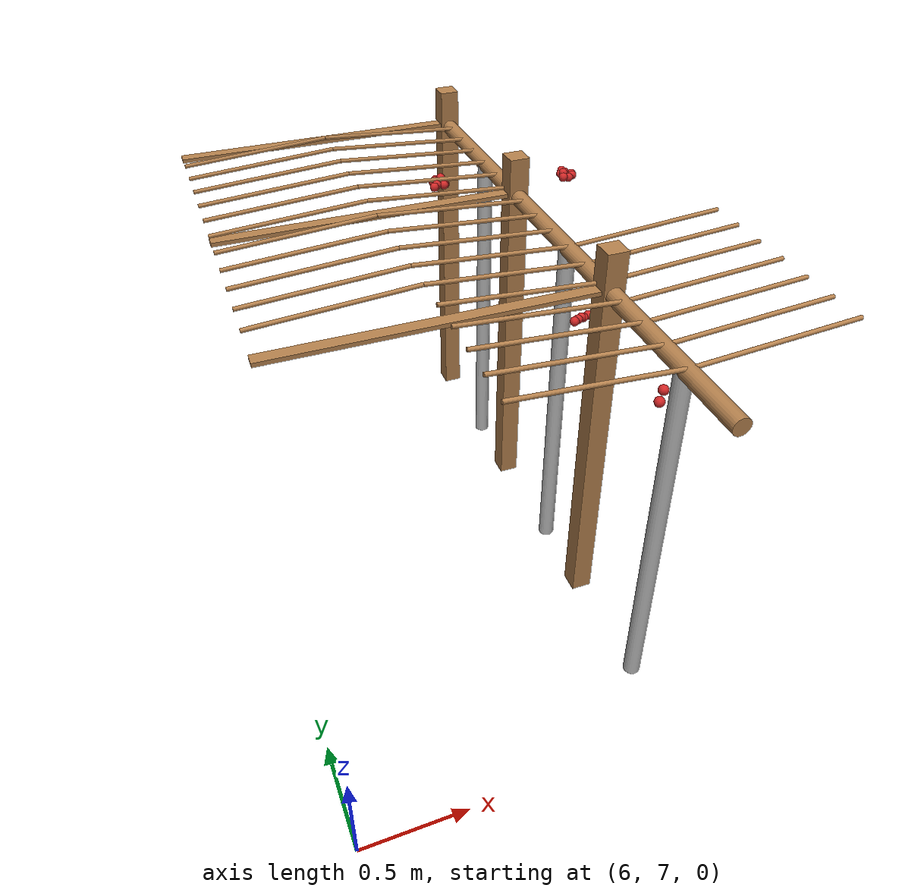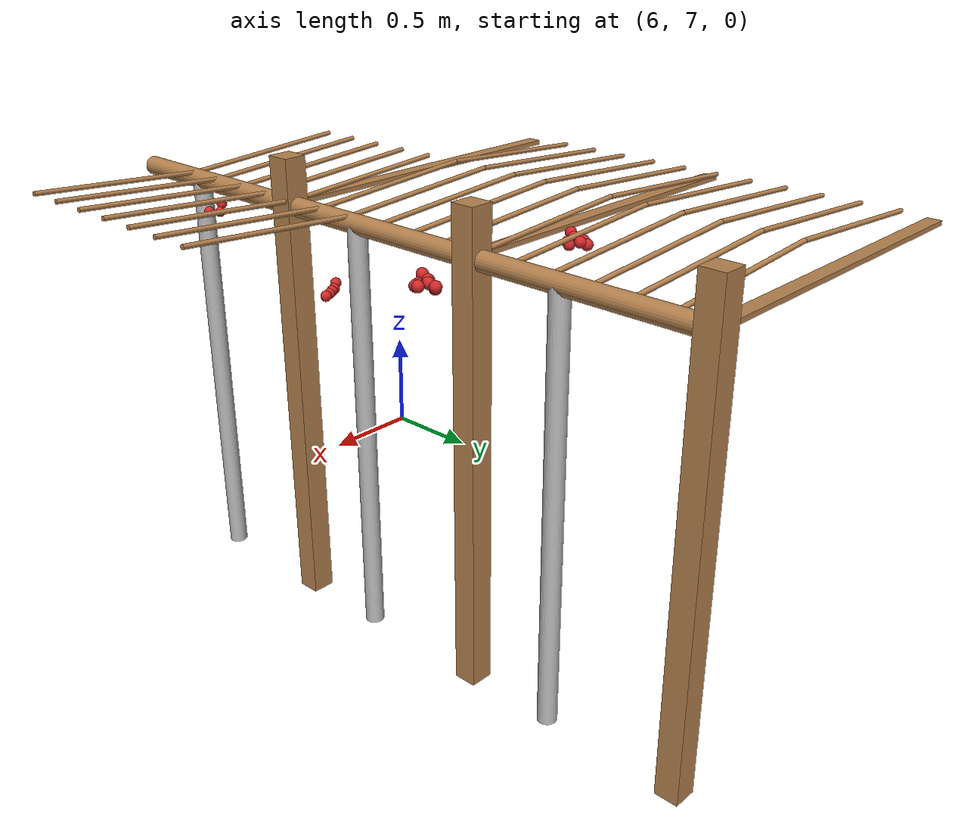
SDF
<sdf version="1.4">
 <model name="pergola">
  <include><name>post_63</name><pose>7.5 8.0 0 0 0 0</pose><uri>model://post</uri></include>
  <include><name>post_64</name><pose>7.5 9.0 0 0 0 0</pose><uri>model://post</uri></include>
  <include><name>post_65</name><pose>7.5 10.0 0 0 0 0</pose><uri>model://post</uri></include>
  <link name="beam_52">
   <pose>6.75 8.0 1.81 0 0 0</pose>
   <collision name="collision"><geometry><box><size>1.5 0.06 0.02</size></box></geometry></collision>
   <visual name="visual">
    <geometry><box><size>1.5 0.06 0.02</size></box></geometry>
    <material><script><name>Gazebo/Wood</name></script></material>
   </visual>
   <inertial>
    <mass>5</mass>
    <inertia>
     <ixx>0.0016666666666666668</ixx>
     <ixy>0.0</ixy>
     <ixz>0.0</ixz>
     <iyy>0.9390000000000001</iyy>
     <iyz>0.0</iyz>
     <izz>0.9376666666666665</izz>
    </inertia>
   </inertial>
  </link>
  <link name="beam_53">
   <pose>6.75 9.0 1.81 0 0 0</pose>
   <collision name="collision"><geometry><box><size>1.5 0.06 0.02</size></box></geometry></collision>
   <visual name="visual">
    <geometry><box><size>1.5 0.06 0.02</size></box></geometry>
    <material><script><name>Gazebo/Wood</name></script></material>
   </visual>
   <inertial>
    <mass>5</mass>
    <inertia>
     <ixx>0.0016666666666666668</ixx>
     <ixy>0.0</ixy>
     <ixz>0.0</ixz>
     <iyy>0.9390000000000001</iyy>
     <iyz>0.0</iyz>
     <izz>0.9376666666666665</izz>
    </inertia>
   </inertial>
  </link>
  <link name="beam_54">
   <pose>6.75 10.0 1.81 0 0 0</pose>
   <collision name="collision"><geometry><box><size>1.5 0.06 0.02</size></box></geometry></collision>
   <visual name="visual">
    <geometry><box><size>1.5 0.06 0.02</size></box></geometry>
    <material><script><name>Gazebo/Wood</name></script></material>
   </visual>
   <inertial>
    <mass>5</mass>
    <inertia>
     <ixx>0.0016666666666666668</ixx>
     <ixy>0.0</ixy>
     <ixz>0.0</ixz>
     <iyy>0.9390000000000001</iyy>
     <iyz>0.0</iyz>
     <izz>0.9376666666666665</izz>
    </inertia>
   </inertial>
  </link>
  <include><name>tree_57</name><pose>7.5 7.4 0 0 0 0</pose><uri>model://tree_trunk</uri></include>
  <include><name>tree_58</name><pose>7.5 8.4 0 0 0 0</pose><uri>model://tree_trunk</uri></include>
  <include><name>tree_59</name><pose>7.5 9.4 0 0 0 0</pose><uri>model://tree_trunk</uri></include>
  <link name="baseBranch_57">
   <pose>7.5 7.5 1.8 1.5707963267948966 0 0</pose>
   <collision name="collision">
    <geometry><cylinder><radius>0.04</radius><length>0.94</length></cylinder></geometry>
   </collision>
   <visual name="visual">
    <geometry><cylinder><radius>0.04</radius><length>0.94</length></cylinder></geometry>
    <material><script><name>Gazebo/WoodFloor</name></script></material>
   </visual>
   <inertial>
    <mass>10</mass>
    <inertia>
     <ixx>0.7403333333333334</ixx>
     <ixy>0.0</ixy>
     <ixz>0.0</ixz>
     <iyy>0.7403333333333334</iyy>
     <iyz>0.0</iyz>
     <izz>0.008</izz>
    </inertia>
   </inertial>
  </link>
  <link name="baseBranch_58">
   <pose>7.5 8.5 1.8 1.5707963267948966 0 0</pose>
   <collision name="collision">
    <geometry><cylinder><radius>0.04</radius><length>0.94</length></cylinder></geometry>
   </collision>
   <visual name="visual">
    <geometry><cylinder><radius>0.04</radius><length>0.94</length></cylinder></geometry>
    <material><script><name>Gazebo/WoodFloor</name></script></material>
   </visual>
   <inertial>
    <mass>10</mass>
    <inertia>
     <ixx>0.7403333333333334</ixx>
     <ixy>0.0</ixy>
     <ixz>0.0</ixz>
     <iyy>0.7403333333333334</iyy>
     <iyz>0.0</iyz>
     <izz>0.008</izz>
    </inertia>
   </inertial>
  </link>
  <link name="baseBranch_59">
   <pose>7.5 9.5 1.8 1.5707963267948966 0 0</pose>
   <collision name="collision">
    <geometry><cylinder><radius>0.04</radius><length>0.94</length></cylinder></geometry>
   </collision>
   <visual name="visual">
    <geometry><cylinder><radius>0.04</radius><length>0.94</length></cylinder></geometry>
    <material><script><name>Gazebo/WoodFloor</name></script></material>
   </visual>
   <inertial>
    <mass>10</mass>
    <inertia>
     <ixx>0.7403333333333334</ixx>
     <ixy>0.0</ixy>
     <ixz>0.0</ixz>
     <iyy>0.7403333333333334</iyy>
     <iyz>0.0</iyz>
     <izz>0.008</izz>
    </inertia>
   </inertial>
  </link>
  <link name="vine_569">
   <pose>7.125 7.363333333333333 1.85 0 -1.5042281630190728 0</pose>
   <collision name="collision">
    <geometry><cylinder><radius>0.01</radius><length>0.7516648189186453</length></cylinder></geometry>
   </collision>
   <visual name="visual">
    <geometry><cylinder><radius>0.01</radius><length>0.7516648189186453</length></cylinder></geometry>
    <material><script><name>Gazebo/WoodFloor</name></script></material>
   </visual>
   <inertial>
    <mass>5</mass>
    <inertia>
     <ixx>0.23554166666666657</ixx>
     <ixy>0.0</ixy>
     <ixz>0.0</ixz>
     <iyy>0.23554166666666657</iyy>
     <iyz>0.0</iyz>
     <izz>0.00025</izz>
    </inertia>
   </inertial>
  </link>
  <link name="vine_571">
   <pose>7.125 7.53 1.85 0 -1.5042281630190728 0</pose>
   <collision name="collision">
    <geometry><cylinder><radius>0.01</radius><length>0.7516648189186453</length></cylinder></geometry>
   </collision>
   <visual name="visual">
    <geometry><cylinder><radius>0.01</radius><length>0.7516648189186453</length></cylinder></geometry>
    <material><script><name>Gazebo/WoodFloor</name></script></material>
   </visual>
   <inertial>
    <mass>5</mass>
    <inertia>
     <ixx>0.23554166666666657</ixx>
     <ixy>0.0</ixy>
     <ixz>0.0</ixz>
     <iyy>0.23554166666666657</iyy>
     <iyz>0.0</iyz>
     <izz>0.00025</izz>
    </inertia>
   </inertial>
  </link>
  <link name="vine_573">
   <pose>7.125 7.696666666666666 1.85 0 -1.5042281630190728 0</pose>
   <collision name="collision">
    <geometry><cylinder><radius>0.01</radius><length>0.7516648189186453</length></cylinder></geometry>
   </collision>
   <visual name="visual">
    <geometry><cylinder><radius>0.01</radius><length>0.7516648189186453</length></cylinder></geometry>
    <material><script><name>Gazebo/WoodFloor</name></script></material>
   </visual>
   <inertial>
    <mass>5</mass>
    <inertia>
     <ixx>0.23554166666666657</ixx>
     <ixy>0.0</ixy>
     <ixz>0.0</ixz>
     <iyy>0.23554166666666657</iyy>
     <iyz>0.0</iyz>
     <izz>0.00025</izz>
    </inertia>
   </inertial>
  </link>
  <link name="vine_575">
   <pose>7.125 7.863333333333333 1.85 0 -1.5042281630190728 0</pose>
   <collision name="collision">
    <geometry><cylinder><radius>0.01</radius><length>0.7516648189186453</length></cylinder></geometry>
   </collision>
   <visual name="visual">
    <geometry><cylinder><radius>0.01</radius><length>0.7516648189186453</length></cylinder></geometry>
    <material><script><name>Gazebo/WoodFloor</name></script></material>
   </visual>
   <inertial>
    <mass>5</mass>
    <inertia>
     <ixx>0.23554166666666657</ixx>
     <ixy>0.0</ixy>
     <ixz>0.0</ixz>
     <iyy>0.23554166666666657</iyy>
     <iyz>0.0</iyz>
     <izz>0.00025</izz>
    </inertia>
   </inertial>
  </link>
  <link name="vine_577">
   <pose>7.125 8.03 1.85 0 -1.5042281630190728 0</pose>
   <collision name="collision">
    <geometry><cylinder><radius>0.01</radius><length>0.7516648189186453</length></cylinder></geometry>
   </collision>
   <visual name="visual">
    <geometry><cylinder><radius>0.01</radius><length>0.7516648189186453</length></cylinder></geometry>
    <material><script><name>Gazebo/WoodFloor</name></script></material>
   </visual>
   <inertial>
    <mass>5</mass>
    <inertia>
     <ixx>0.23554166666666657</ixx>
     <ixy>0.0</ixy>
     <ixz>0.0</ixz>
     <iyy>0.23554166666666657</iyy>
     <iyz>0.0</iyz>
     <izz>0.00025</izz>
    </inertia>
   </inertial>
  </link>
  <link name="vine_578">
   <pose>6.375 8.196666666666665 1.85 0 1.5042281630190728 0</pose>
   <collision name="collision">
    <geometry><cylinder><radius>0.01</radius><length>0.7516648189186453</length></cylinder></geometry>
   </collision>
   <visual name="visual">
    <geometry><cylinder><radius>0.01</radius><length>0.7516648189186453</length></cylinder></geometry>
    <material><script><name>Gazebo/WoodFloor</name></script></material>
   </visual>
   <inertial>
    <mass>5</mass>
    <inertia>
     <ixx>0.23554166666666657</ixx>
     <ixy>0.0</ixy>
     <ixz>0.0</ixz>
     <iyy>0.23554166666666657</iyy>
     <iyz>0.0</iyz>
     <izz>0.00025</izz>
    </inertia>
   </inertial>
  </link>
  <link name="vine_579">
   <pose>7.125 8.196666666666665 1.85 0 -1.5042281630190728 0</pose>
   <collision name="collision">
    <geometry><cylinder><radius>0.01</radius><length>0.7516648189186453</length></cylinder></geometry>
   </collision>
   <visual name="visual">
    <geometry><cylinder><radius>0.01</radius><length>0.7516648189186453</length></cylinder></geometry>
    <material><script><name>Gazebo/WoodFloor</name></script></material>
   </visual>
   <inertial>
    <mass>5</mass>
    <inertia>
     <ixx>0.23554166666666657</ixx>
     <ixy>0.0</ixy>
     <ixz>0.0</ixz>
     <iyy>0.23554166666666657</iyy>
     <iyz>0.0</iyz>
     <izz>0.00025</izz>
    </inertia>
   </inertial>
  </link>
  <link name="vine_580">
   <pose>6.375 8.363333333333332 1.85 0 1.5042281630190728 0</pose>
   <collision name="collision">
    <geometry><cylinder><radius>0.01</radius><length>0.7516648189186453</length></cylinder></geometry>
   </collision>
   <visual name="visual">
    <geometry><cylinder><radius>0.01</radius><length>0.7516648189186453</length></cylinder></geometry>
    <material><script><name>Gazebo/WoodFloor</name></script></material>
   </visual>
   <inertial>
    <mass>5</mass>
    <inertia>
     <ixx>0.23554166666666657</ixx>
     <ixy>0.0</ixy>
     <ixz>0.0</ixz>
     <iyy>0.23554166666666657</iyy>
     <iyz>0.0</iyz>
     <izz>0.00025</izz>
    </inertia>
   </inertial>
  </link>
  <link name="vine_581">
   <pose>7.125 8.363333333333332 1.85 0 -1.5042281630190728 0</pose>
   <collision name="collision">
    <geometry><cylinder><radius>0.01</radius><length>0.7516648189186453</length></cylinder></geometry>
   </collision>
   <visual name="visual">
    <geometry><cylinder><radius>0.01</radius><length>0.7516648189186453</length></cylinder></geometry>
    <material><script><name>Gazebo/WoodFloor</name></script></material>
   </visual>
   <inertial>
    <mass>5</mass>
    <inertia>
     <ixx>0.23554166666666657</ixx>
     <ixy>0.0</ixy>
     <ixz>0.0</ixz>
     <iyy>0.23554166666666657</iyy>
     <iyz>0.0</iyz>
     <izz>0.00025</izz>
    </inertia>
   </inertial>
  </link>
  <link name="vine_582">
   <pose>6.375 8.53 1.85 0 1.5042281630190728 0</pose>
   <collision name="collision">
    <geometry><cylinder><radius>0.01</radius><length>0.7516648189186453</length></cylinder></geometry>
   </collision>
   <visual name="visual">
    <geometry><cylinder><radius>0.01</radius><length>0.7516648189186453</length></cylinder></geometry>
    <material><script><name>Gazebo/WoodFloor</name></script></material>
   </visual>
   <inertial>
    <mass>5</mass>
    <inertia>
     <ixx>0.23554166666666657</ixx>
     <ixy>0.0</ixy>
     <ixz>0.0</ixz>
     <iyy>0.23554166666666657</iyy>
     <iyz>0.0</iyz>
     <izz>0.00025</izz>
    </inertia>
   </inertial>
  </link>
  <link name="vine_583">
   <pose>7.125 8.53 1.85 0 -1.5042281630190728 0</pose>
   <collision name="collision">
    <geometry><cylinder><radius>0.01</radius><length>0.7516648189186453</length></cylinder></geometry>
   </collision>
   <visual name="visual">
    <geometry><cylinder><radius>0.01</radius><length>0.7516648189186453</length></cylinder></geometry>
    <material><script><name>Gazebo/WoodFloor</name></script></material>
   </visual>
   <inertial>
    <mass>5</mass>
    <inertia>
     <ixx>0.23554166666666657</ixx>
     <ixy>0.0</ixy>
     <ixz>0.0</ixz>
     <iyy>0.23554166666666657</iyy>
     <iyz>0.0</iyz>
     <izz>0.00025</izz>
    </inertia>
   </inertial>
  </link>
  <link name="vine_584">
   <pose>6.375 8.696666666666665 1.85 0 1.5042281630190728 0</pose>
   <collision name="collision">
    <geometry><cylinder><radius>0.01</radius><length>0.7516648189186453</length></cylinder></geometry>
   </collision>
   <visual name="visual">
    <geometry><cylinder><radius>0.01</radius><length>0.7516648189186453</length></cylinder></geometry>
    <material><script><name>Gazebo/WoodFloor</name></script></material>
   </visual>
   <inertial>
    <mass>5</mass>
    <inertia>
     <ixx>0.23554166666666657</ixx>
     <ixy>0.0</ixy>
     <ixz>0.0</ixz>
     <iyy>0.23554166666666657</iyy>
     <iyz>0.0</iyz>
     <izz>0.00025</izz>
    </inertia>
   </inertial>
  </link>
  <link name="vine_585">
   <pose>7.125 8.696666666666665 1.85 0 -1.5042281630190728 0</pose>
   <collision name="collision">
    <geometry><cylinder><radius>0.01</radius><length>0.7516648189186453</length></cylinder></geometry>
   </collision>
   <visual name="visual">
    <geometry><cylinder><radius>0.01</radius><length>0.7516648189186453</length></cylinder></geometry>
    <material><script><name>Gazebo/WoodFloor</name></script></material>
   </visual>
   <inertial>
    <mass>5</mass>
    <inertia>
     <ixx>0.23554166666666657</ixx>
     <ixy>0.0</ixy>
     <ixz>0.0</ixz>
     <iyy>0.23554166666666657</iyy>
     <iyz>0.0</iyz>
     <izz>0.00025</izz>
    </inertia>
   </inertial>
  </link>
  <link name="vine_586">
   <pose>6.375 8.863333333333332 1.85 0 1.5042281630190728 0</pose>
   <collision name="collision">
    <geometry><cylinder><radius>0.01</radius><length>0.7516648189186453</length></cylinder></geometry>
   </collision>
   <visual name="visual">
    <geometry><cylinder><radius>0.01</radius><length>0.7516648189186453</length></cylinder></geometry>
    <material><script><name>Gazebo/WoodFloor</name></script></material>
   </visual>
   <inertial>
    <mass>5</mass>
    <inertia>
     <ixx>0.23554166666666657</ixx>
     <ixy>0.0</ixy>
     <ixz>0.0</ixz>
     <iyy>0.23554166666666657</iyy>
     <iyz>0.0</iyz>
     <izz>0.00025</izz>
    </inertia>
   </inertial>
  </link>
  <link name="vine_587">
   <pose>7.125 8.863333333333332 1.85 0 -1.5042281630190728 0</pose>
   <collision name="collision">
    <geometry><cylinder><radius>0.01</radius><length>0.7516648189186453</length></cylinder></geometry>
   </collision>
   <visual name="visual">
    <geometry><cylinder><radius>0.01</radius><length>0.7516648189186453</length></cylinder></geometry>
    <material><script><name>Gazebo/WoodFloor</name></script></material>
   </visual>
   <inertial>
    <mass>5</mass>
    <inertia>
     <ixx>0.23554166666666657</ixx>
     <ixy>0.0</ixy>
     <ixz>0.0</ixz>
     <iyy>0.23554166666666657</iyy>
     <iyz>0.0</iyz>
     <izz>0.00025</izz>
    </inertia>
   </inertial>
  </link>
  <link name="vine_588">
   <pose>6.375 9.03 1.85 0 1.5042281630190728 0</pose>
   <collision name="collision">
    <geometry><cylinder><radius>0.01</radius><length>0.7516648189186453</length></cylinder></geometry>
   </collision>
   <visual name="visual">
    <geometry><cylinder><radius>0.01</radius><length>0.7516648189186453</length></cylinder></geometry>
    <material><script><name>Gazebo/WoodFloor</name></script></material>
   </visual>
   <inertial>
    <mass>5</mass>
    <inertia>
     <ixx>0.23554166666666657</ixx>
     <ixy>0.0</ixy>
     <ixz>0.0</ixz>
     <iyy>0.23554166666666657</iyy>
     <iyz>0.0</iyz>
     <izz>0.00025</izz>
    </inertia>
   </inertial>
  </link>
  <link name="vine_589">
   <pose>7.125 9.03 1.85 0 -1.5042281630190728 0</pose>
   <collision name="collision">
    <geometry><cylinder><radius>0.01</radius><length>0.7516648189186453</length></cylinder></geometry>
   </collision>
   <visual name="visual">
    <geometry><cylinder><radius>0.01</radius><length>0.7516648189186453</length></cylinder></geometry>
    <material><script><name>Gazebo/WoodFloor</name></script></material>
   </visual>
   <inertial>
    <mass>5</mass>
    <inertia>
     <ixx>0.23554166666666657</ixx>
     <ixy>0.0</ixy>
     <ixz>0.0</ixz>
     <iyy>0.23554166666666657</iyy>
     <iyz>0.0</iyz>
     <izz>0.00025</izz>
    </inertia>
   </inertial>
  </link>
  <link name="vine_590">
   <pose>6.375 9.196666666666665 1.85 0 1.5042281630190728 0</pose>
   <collision name="collision">
    <geometry><cylinder><radius>0.01</radius><length>0.7516648189186453</length></cylinder></geometry>
   </collision>
   <visual name="visual">
    <geometry><cylinder><radius>0.01</radius><length>0.7516648189186453</length></cylinder></geometry>
    <material><script><name>Gazebo/WoodFloor</name></script></material>
   </visual>
   <inertial>
    <mass>5</mass>
    <inertia>
     <ixx>0.23554166666666657</ixx>
     <ixy>0.0</ixy>
     <ixz>0.0</ixz>
     <iyy>0.23554166666666657</iyy>
     <iyz>0.0</iyz>
     <izz>0.00025</izz>
    </inertia>
   </inertial>
  </link>
  <link name="vine_591">
   <pose>7.125 9.196666666666665 1.85 0 -1.5042281630190728 0</pose>
   <collision name="collision">
    <geometry><cylinder><radius>0.01</radius><length>0.7516648189186453</length></cylinder></geometry>
   </collision>
   <visual name="visual">
    <geometry><cylinder><radius>0.01</radius><length>0.7516648189186453</length></cylinder></geometry>
    <material><script><name>Gazebo/WoodFloor</name></script></material>
   </visual>
   <inertial>
    <mass>5</mass>
    <inertia>
     <ixx>0.23554166666666657</ixx>
     <ixy>0.0</ixy>
     <ixz>0.0</ixz>
     <iyy>0.23554166666666657</iyy>
     <iyz>0.0</iyz>
     <izz>0.00025</izz>
    </inertia>
   </inertial>
  </link>
  <link name="vine_592">
   <pose>6.375 9.363333333333332 1.85 0 1.5042281630190728 0</pose>
   <collision name="collision">
    <geometry><cylinder><radius>0.01</radius><length>0.7516648189186453</length></cylinder></geometry>
   </collision>
   <visual name="visual">
    <geometry><cylinder><radius>0.01</radius><length>0.7516648189186453</length></cylinder></geometry>
    <material><script><name>Gazebo/WoodFloor</name></script></material>
   </visual>
   <inertial>
    <mass>5</mass>
    <inertia>
     <ixx>0.23554166666666657</ixx>
     <ixy>0.0</ixy>
     <ixz>0.0</ixz>
     <iyy>0.23554166666666657</iyy>
     <iyz>0.0</iyz>
     <izz>0.00025</izz>
    </inertia>
   </inertial>
  </link>
  <link name="vine_593">
   <pose>7.125 9.363333333333332 1.85 0 -1.5042281630190728 0</pose>
   <collision name="collision">
    <geometry><cylinder><radius>0.01</radius><length>0.7516648189186453</length></cylinder></geometry>
   </collision>
   <visual name="visual">
    <geometry><cylinder><radius>0.01</radius><length>0.7516648189186453</length></cylinder></geometry>
    <material><script><name>Gazebo/WoodFloor</name></script></material>
   </visual>
   <inertial>
    <mass>5</mass>
    <inertia>
     <ixx>0.23554166666666657</ixx>
     <ixy>0.0</ixy>
     <ixz>0.0</ixz>
     <iyy>0.23554166666666657</iyy>
     <iyz>0.0</iyz>
     <izz>0.00025</izz>
    </inertia>
   </inertial>
  </link>
  <link name="vine_594">
   <pose>6.375 9.53 1.85 0 1.5042281630190728 0</pose>
   <collision name="collision">
    <geometry><cylinder><radius>0.01</radius><length>0.7516648189186453</length></cylinder></geometry>
   </collision>
   <visual name="visual">
    <geometry><cylinder><radius>0.01</radius><length>0.7516648189186453</length></cylinder></geometry>
    <material><script><name>Gazebo/WoodFloor</name></script></material>
   </visual>
   <inertial>
    <mass>5</mass>
    <inertia>
     <ixx>0.23554166666666657</ixx>
     <ixy>0.0</ixy>
     <ixz>0.0</ixz>
     <iyy>0.23554166666666657</iyy>
     <iyz>0.0</iyz>
     <izz>0.00025</izz>
    </inertia>
   </inertial>
  </link>
  <link name="vine_595">
   <pose>7.125 9.53 1.85 0 -1.5042281630190728 0</pose>
   <collision name="collision">
    <geometry><cylinder><radius>0.01</radius><length>0.7516648189186453</length></cylinder></geometry>
   </collision>
   <visual name="visual">
    <geometry><cylinder><radius>0.01</radius><length>0.7516648189186453</length></cylinder></geometry>
    <material><script><name>Gazebo/WoodFloor</name></script></material>
   </visual>
   <inertial>
    <mass>5</mass>
    <inertia>
     <ixx>0.23554166666666657</ixx>
     <ixy>0.0</ixy>
     <ixz>0.0</ixz>
     <iyy>0.23554166666666657</iyy>
     <iyz>0.0</iyz>
     <izz>0.00025</izz>
    </inertia>
   </inertial>
  </link>
  <link name="vine_596">
   <pose>6.375 9.696666666666665 1.85 0 1.5042281630190728 0</pose>
   <collision name="collision">
    <geometry><cylinder><radius>0.01</radius><length>0.7516648189186453</length></cylinder></geometry>
   </collision>
   <visual name="visual">
    <geometry><cylinder><radius>0.01</radius><length>0.7516648189186453</length></cylinder></geometry>
    <material><script><name>Gazebo/WoodFloor</name></script></material>
   </visual>
   <inertial>
    <mass>5</mass>
    <inertia>
     <ixx>0.23554166666666657</ixx>
     <ixy>0.0</ixy>
     <ixz>0.0</ixz>
     <iyy>0.23554166666666657</iyy>
     <iyz>0.0</iyz>
     <izz>0.00025</izz>
    </inertia>
   </inertial>
  </link>
  <link name="vine_597">
   <pose>7.125 9.696666666666665 1.85 0 -1.5042281630190728 0</pose>
   <collision name="collision">
    <geometry><cylinder><radius>0.01</radius><length>0.7516648189186453</length></cylinder></geometry>
   </collision>
   <visual name="visual">
    <geometry><cylinder><radius>0.01</radius><length>0.7516648189186453</length></cylinder></geometry>
    <material><script><name>Gazebo/WoodFloor</name></script></material>
   </visual>
   <inertial>
    <mass>5</mass>
    <inertia>
     <ixx>0.23554166666666657</ixx>
     <ixy>0.0</ixy>
     <ixz>0.0</ixz>
     <iyy>0.23554166666666657</iyy>
     <iyz>0.0</iyz>
     <izz>0.00025</izz>
    </inertia>
   </inertial>
  </link>
  <link name="vine_598">
   <pose>6.375 9.863333333333332 1.85 0 1.5042281630190728 0</pose>
   <collision name="collision">
    <geometry><cylinder><radius>0.01</radius><length>0.7516648189186453</length></cylinder></geometry>
   </collision>
   <visual name="visual">
    <geometry><cylinder><radius>0.01</radius><length>0.7516648189186453</length></cylinder></geometry>
    <material><script><name>Gazebo/WoodFloor</name></script></material>
   </visual>
   <inertial>
    <mass>5</mass>
    <inertia>
     <ixx>0.23554166666666657</ixx>
     <ixy>0.0</ixy>
     <ixz>0.0</ixz>
     <iyy>0.23554166666666657</iyy>
     <iyz>0.0</iyz>
     <izz>0.00025</izz>
    </inertia>
   </inertial>
  </link>
  <link name="vine_599">
   <pose>7.125 9.863333333333332 1.85 0 -1.5042281630190728 0</pose>
   <collision name="collision">
    <geometry><cylinder><radius>0.01</radius><length>0.7516648189186453</length></cylinder></geometry>
   </collision>
   <visual name="visual">
    <geometry><cylinder><radius>0.01</radius><length>0.7516648189186453</length></cylinder></geometry>
    <material><script><name>Gazebo/WoodFloor</name></script></material>
   </visual>
   <inertial>
    <mass>5</mass>
    <inertia>
     <ixx>0.23554166666666657</ixx>
     <ixy>0.0</ixy>
     <ixz>0.0</ixz>
     <iyy>0.23554166666666657</iyy>
     <iyz>0.0</iyz>
     <izz>0.00025</izz>
    </inertia>
   </inertial>
  </link>
  <link name="vine_688">
   <pose>7.875 7.363333333333333 1.85 0 1.5042281630190728 0</pose>
   <collision name="collision">
    <geometry><cylinder><radius>0.01</radius><length>0.7516648189186453</length></cylinder></geometry>
   </collision>
   <visual name="visual">
    <geometry><cylinder><radius>0.01</radius><length>0.7516648189186453</length></cylinder></geometry>
    <material><script><name>Gazebo/WoodFloor</name></script></material>
   </visual>
   <inertial>
    <mass>5</mass>
    <inertia>
     <ixx>0.23554166666666657</ixx>
     <ixy>0.0</ixy>
     <ixz>0.0</ixz>
     <iyy>0.23554166666666657</iyy>
     <iyz>0.0</iyz>
     <izz>0.00025</izz>
    </inertia>
   </inertial>
  </link>
  <link name="vine_690">
   <pose>7.875 7.53 1.85 0 1.5042281630190728 0</pose>
   <collision name="collision">
    <geometry><cylinder><radius>0.01</radius><length>0.7516648189186453</length></cylinder></geometry>
   </collision>
   <visual name="visual">
    <geometry><cylinder><radius>0.01</radius><length>0.7516648189186453</length></cylinder></geometry>
    <material><script><name>Gazebo/WoodFloor</name></script></material>
   </visual>
   <inertial>
    <mass>5</mass>
    <inertia>
     <ixx>0.23554166666666657</ixx>
     <ixy>0.0</ixy>
     <ixz>0.0</ixz>
     <iyy>0.23554166666666657</iyy>
     <iyz>0.0</iyz>
     <izz>0.00025</izz>
    </inertia>
   </inertial>
  </link>
  <link name="vine_692">
   <pose>7.875 7.696666666666666 1.85 0 1.5042281630190728 0</pose>
   <collision name="collision">
    <geometry><cylinder><radius>0.01</radius><length>0.7516648189186453</length></cylinder></geometry>
   </collision>
   <visual name="visual">
    <geometry><cylinder><radius>0.01</radius><length>0.7516648189186453</length></cylinder></geometry>
    <material><script><name>Gazebo/WoodFloor</name></script></material>
   </visual>
   <inertial>
    <mass>5</mass>
    <inertia>
     <ixx>0.23554166666666657</ixx>
     <ixy>0.0</ixy>
     <ixz>0.0</ixz>
     <iyy>0.23554166666666657</iyy>
     <iyz>0.0</iyz>
     <izz>0.00025</izz>
    </inertia>
   </inertial>
  </link>
  <link name="vine_694">
   <pose>7.875 7.863333333333333 1.85 0 1.5042281630190728 0</pose>
   <collision name="collision">
    <geometry><cylinder><radius>0.01</radius><length>0.7516648189186453</length></cylinder></geometry>
   </collision>
   <visual name="visual">
    <geometry><cylinder><radius>0.01</radius><length>0.7516648189186453</length></cylinder></geometry>
    <material><script><name>Gazebo/WoodFloor</name></script></material>
   </visual>
   <inertial>
    <mass>5</mass>
    <inertia>
     <ixx>0.23554166666666657</ixx>
     <ixy>0.0</ixy>
     <ixz>0.0</ixz>
     <iyy>0.23554166666666657</iyy>
     <iyz>0.0</iyz>
     <izz>0.00025</izz>
    </inertia>
   </inertial>
  </link>
  <link name="vine_696">
   <pose>7.875 8.03 1.85 0 1.5042281630190728 0</pose>
   <collision name="collision">
    <geometry><cylinder><radius>0.01</radius><length>0.7516648189186453</length></cylinder></geometry>
   </collision>
   <visual name="visual">
    <geometry><cylinder><radius>0.01</radius><length>0.7516648189186453</length></cylinder></geometry>
    <material><script><name>Gazebo/WoodFloor</name></script></material>
   </visual>
   <inertial>
    <mass>5</mass>
    <inertia>
     <ixx>0.23554166666666657</ixx>
     <ixy>0.0</ixy>
     <ixz>0.0</ixz>
     <iyy>0.23554166666666657</iyy>
     <iyz>0.0</iyz>
     <izz>0.00025</izz>
    </inertia>
   </inertial>
  </link>
  <link name="vine_698">
   <pose>7.875 8.196666666666665 1.85 0 1.5042281630190728 0</pose>
   <collision name="collision">
    <geometry><cylinder><radius>0.01</radius><length>0.7516648189186453</length></cylinder></geometry>
   </collision>
   <visual name="visual">
    <geometry><cylinder><radius>0.01</radius><length>0.7516648189186453</length></cylinder></geometry>
    <material><script><name>Gazebo/WoodFloor</name></script></material>
   </visual>
   <inertial>
    <mass>5</mass>
    <inertia>
     <ixx>0.23554166666666657</ixx>
     <ixy>0.0</ixy>
     <ixz>0.0</ixz>
     <iyy>0.23554166666666657</iyy>
     <iyz>0.0</iyz>
     <izz>0.00025</izz>
    </inertia>
   </inertial>
  </link>
  <link name="vine_700">
   <pose>7.875 8.363333333333332 1.85 0 1.5042281630190728 0</pose>
   <collision name="collision">
    <geometry><cylinder><radius>0.01</radius><length>0.7516648189186453</length></cylinder></geometry>
   </collision>
   <visual name="visual">
    <geometry><cylinder><radius>0.01</radius><length>0.7516648189186453</length></cylinder></geometry>
    <material><script><name>Gazebo/WoodFloor</name></script></material>
   </visual>
   <inertial>
    <mass>5</mass>
    <inertia>
     <ixx>0.23554166666666657</ixx>
     <ixy>0.0</ixy>
     <ixz>0.0</ixz>
     <iyy>0.23554166666666657</iyy>
     <iyz>0.0</iyz>
     <izz>0.00025</izz>
    </inertia>
   </inertial>
  </link>
  <link name="fruit_2">
   <pose>7.474318539487924 8.22461388994173 1.5178764006575898 0 0 0</pose>
   <collision name="fruit_collision_2"><geometry><sphere><radius>0.022</radius></sphere></geometry></collision>
   <visual name="visual">
    <geometry><sphere><radius>0.022</radius></sphere></geometry>
    <material><script><name>Gazebo/Red</name></script></material>
   </visual>
   <inertial>
    <mass>0.05</mass>
    <inertia>
     <ixx>9.679999999999999e-06</ixx>
     <ixy>0.0</ixy>
     <ixz>0.0</ixz>
     <iyy>9.679999999999999e-06</iyy>
     <iyz>0.0</iyz>
     <izz>9.679999999999999e-06</izz>
    </inertia>
   </inertial>
   <sensor name="fruit_contact_2" type="contact">
    <contact><collision>fruit_collision_2</collision></contact>
   </sensor>
  </link>
  <link name="fruit_36">
   <pose>7.409778917890406 7.395281469813446 1.6714839571340152 0 0 0</pose>
   <collision name="fruit_collision_36"><geometry><sphere><radius>0.022</radius></sphere></geometry></collision>
   <visual name="visual">
    <geometry><sphere><radius>0.022</radius></sphere></geometry>
    <material><script><name>Gazebo/Red</name></script></material>
   </visual>
   <inertial>
    <mass>0.05</mass>
    <inertia>
     <ixx>9.679999999999999e-06</ixx>
     <ixy>0.0</ixy>
     <ixz>0.0</ixz>
     <iyy>9.679999999999999e-06</iyy>
     <iyz>0.0</iyz>
     <izz>9.679999999999999e-06</izz>
    </inertia>
   </inertial>
   <sensor name="fruit_contact_36" type="contact">
    <contact><collision>fruit_collision_36</collision></contact>
   </sensor>
  </link>
  <link name="fruit_62">
   <pose>7.124826461763218 9.13914447141613 1.8370629459787937 0 0 0</pose>
   <collision name="fruit_collision_62"><geometry><sphere><radius>0.022</radius></sphere></geometry></collision>
   <visual name="visual">
    <geometry><sphere><radius>0.022</radius></sphere></geometry>
    <material><script><name>Gazebo/Red</name></script></material>
   </visual>
   <inertial>
    <mass>0.05</mass>
    <inertia>
     <ixx>9.679999999999999e-06</ixx>
     <ixy>0.0</ixy>
     <ixz>0.0</ixz>
     <iyy>9.679999999999999e-06</iyy>
     <iyz>0.0</iyz>
     <izz>9.679999999999999e-06</izz>
    </inertia>
   </inertial>
   <sensor name="fruit_contact_62" type="contact">
    <contact><collision>fruit_collision_62</collision></contact>
   </sensor>
  </link>
  <link name="fruit_77">
   <pose>7.787560357971757 9.047993105382487 1.824046789731025 0 0 0</pose>
   <collision name="fruit_collision_77"><geometry><sphere><radius>0.022</radius></sphere></geometry></collision>
   <visual name="visual">
    <geometry><sphere><radius>0.022</radius></sphere></geometry>
    <material><script><name>Gazebo/Red</name></script></material>
   </visual>
   <inertial>
    <mass>0.05</mass>
    <inertia>
     <ixx>9.679999999999999e-06</ixx>
     <ixy>0.0</ixy>
     <ixz>0.0</ixz>
     <iyy>9.679999999999999e-06</iyy>
     <iyz>0.0</iyz>
     <izz>9.679999999999999e-06</izz>
    </inertia>
   </inertial>
   <sensor name="fruit_contact_77" type="contact">
    <contact><collision>fruit_collision_77</collision></contact>
   </sensor>
  </link>
  <link name="fruit_114">
   <pose>7.188069956441901 9.174535492079896 1.824269617275048 0 0 0</pose>
   <collision name="fruit_collision_114"><geometry><sphere><radius>0.022</radius></sphere></geometry></collision>
   <visual name="visual">
    <geometry><sphere><radius>0.022</radius></sphere></geometry>
    <material><script><name>Gazebo/Red</name></script></material>
   </visual>
   <inertial>
    <mass>0.05</mass>
    <inertia>
     <ixx>9.679999999999999e-06</ixx>
     <ixy>0.0</ixy>
     <ixz>0.0</ixz>
     <iyy>9.679999999999999e-06</iyy>
     <iyz>0.0</iyz>
     <izz>9.679999999999999e-06</izz>
    </inertia>
   </inertial>
   <sensor name="fruit_contact_114" type="contact">
    <contact><collision>fruit_collision_114</collision></contact>
   </sensor>
  </link>
  <link name="fruit_115">
   <pose>7.813653201782346 9.102405267091967 1.8221626211314166 0 0 0</pose>
   <collision name="fruit_collision_115"><geometry><sphere><radius>0.022</radius></sphere></geometry></collision>
   <visual name="visual">
    <geometry><sphere><radius>0.022</radius></sphere></geometry>
    <material><script><name>Gazebo/Red</name></script></material>
   </visual>
   <inertial>
    <mass>0.05</mass>
    <inertia>
     <ixx>9.679999999999999e-06</ixx>
     <ixy>0.0</ixy>
     <ixz>0.0</ixz>
     <iyy>9.679999999999999e-06</iyy>
     <iyz>0.0</iyz>
     <izz>9.679999999999999e-06</izz>
    </inertia>
   </inertial>
   <sensor name="fruit_contact_115" type="contact">
    <contact><collision>fruit_collision_115</collision></contact>
   </sensor>
  </link>
  <link name="fruit_134">
   <pose>7.832098190515946 9.072399436262472 1.8058307641848896 0 0 0</pose>
   <collision name="fruit_collision_134"><geometry><sphere><radius>0.022</radius></sphere></geometry></collision>
   <visual name="visual">
    <geometry><sphere><radius>0.022</radius></sphere></geometry>
    <material><script><name>Gazebo/Red</name></script></material>
   </visual>
   <inertial>
    <mass>0.05</mass>
    <inertia>
     <ixx>9.679999999999999e-06</ixx>
     <ixy>0.0</ixy>
     <ixz>0.0</ixz>
     <iyy>9.679999999999999e-06</iyy>
     <iyz>0.0</iyz>
     <izz>9.679999999999999e-06</izz>
    </inertia>
   </inertial>
   <sensor name="fruit_contact_134" type="contact">
    <contact><collision>fruit_collision_134</collision></contact>
   </sensor>
  </link>
  <link name="fruit_164">
   <pose>7.504376845397447 8.249544027380008 1.5070843389495003 0 0 0</pose>
   <collision name="fruit_collision_164"><geometry><sphere><radius>0.022</radius></sphere></geometry></collision>
   <visual name="visual">
    <geometry><sphere><radius>0.022</radius></sphere></geometry>
    <material><script><name>Gazebo/Red</name></script></material>
   </visual>
   <inertial>
    <mass>0.05</mass>
    <inertia>
     <ixx>9.679999999999999e-06</ixx>
     <ixy>0.0</ixy>
     <ixz>0.0</ixz>
     <iyy>9.679999999999999e-06</iyy>
     <iyz>0.0</iyz>
     <izz>9.679999999999999e-06</izz>
    </inertia>
   </inertial>
   <sensor name="fruit_contact_164" type="contact">
    <contact><collision>fruit_collision_164</collision></contact>
   </sensor>
  </link>
  <link name="fruit_165">
   <pose>7.167031052131071 9.248156267089406 1.8244151874383825 0 0 0</pose>
   <collision name="fruit_collision_165"><geometry><sphere><radius>0.022</radius></sphere></geometry></collision>
   <visual name="visual">
    <geometry><sphere><radius>0.022</radius></sphere></geometry>
    <material><script><name>Gazebo/Red</name></script></material>
   </visual>
   <inertial>
    <mass>0.05</mass>
    <inertia>
     <ixx>9.679999999999999e-06</ixx>
     <ixy>0.0</ixy>
     <ixz>0.0</ixz>
     <iyy>9.679999999999999e-06</iyy>
     <iyz>0.0</iyz>
     <izz>9.679999999999999e-06</izz>
    </inertia>
   </inertial>
   <sensor name="fruit_contact_165" type="contact">
    <contact><collision>fruit_collision_165</collision></contact>
   </sensor>
  </link>
  <link name="fruit_167">
   <pose>7.816966031270758 9.137636947352641 1.8020817629713135 0 0 0</pose>
   <collision name="fruit_collision_167"><geometry><sphere><radius>0.022</radius></sphere></geometry></collision>
   <visual name="visual">
    <geometry><sphere><radius>0.022</radius></sphere></geometry>
    <material><script><name>Gazebo/Red</name></script></material>
   </visual>
   <inertial>
    <mass>0.05</mass>
    <inertia>
     <ixx>9.679999999999999e-06</ixx>
     <ixy>0.0</ixy>
     <ixz>0.0</ixz>
     <iyy>9.679999999999999e-06</iyy>
     <iyz>0.0</iyz>
     <izz>9.679999999999999e-06</izz>
    </inertia>
   </inertial>
   <sensor name="fruit_contact_167" type="contact">
    <contact><collision>fruit_collision_167</collision></contact>
   </sensor>
  </link>
  <link name="fruit_173">
   <pose>7.148526585399912 9.227305622390718 1.8210602553794326 0 0 0</pose>
   <collision name="fruit_collision_173"><geometry><sphere><radius>0.022</radius></sphere></geometry></collision>
   <visual name="visual">
    <geometry><sphere><radius>0.022</radius></sphere></geometry>
    <material><script><name>Gazebo/Red</name></script></material>
   </visual>
   <inertial>
    <mass>0.05</mass>
    <inertia>
     <ixx>9.679999999999999e-06</ixx>
     <ixy>0.0</ixy>
     <ixz>0.0</ixz>
     <iyy>9.679999999999999e-06</iyy>
     <iyz>0.0</iyz>
     <izz>9.679999999999999e-06</izz>
    </inertia>
   </inertial>
   <sensor name="fruit_contact_173" type="contact">
    <contact><collision>fruit_collision_173</collision></contact>
   </sensor>
  </link>
  <link name="fruit_226">
   <pose>7.508802672325185 7.4427413796347865 1.6673948883643646 0 0 0</pose>
   <collision name="fruit_collision_226"><geometry><sphere><radius>0.022</radius></sphere></geometry></collision>
   <visual name="visual">
    <geometry><sphere><radius>0.022</radius></sphere></geometry>
    <material><script><name>Gazebo/Red</name></script></material>
   </visual>
   <inertial>
    <mass>0.05</mass>
    <inertia>
     <ixx>9.679999999999999e-06</ixx>
     <ixy>0.0</ixy>
     <ixz>0.0</ixz>
     <iyy>9.679999999999999e-06</iyy>
     <iyz>0.0</iyz>
     <izz>9.679999999999999e-06</izz>
    </inertia>
   </inertial>
   <sensor name="fruit_contact_226" type="contact">
    <contact><collision>fruit_collision_226</collision></contact>
   </sensor>
  </link>
  <link name="fruit_244">
   <pose>7.155309349162582 9.221179903716585 1.8313770665618354 0 0 0</pose>
   <collision name="fruit_collision_244"><geometry><sphere><radius>0.022</radius></sphere></geometry></collision>
   <visual name="visual">
    <geometry><sphere><radius>0.022</radius></sphere></geometry>
    <material><script><name>Gazebo/Red</name></script></material>
   </visual>
   <inertial>
    <mass>0.05</mass>
    <inertia>
     <ixx>9.679999999999999e-06</ixx>
     <ixy>0.0</ixy>
     <ixz>0.0</ixz>
     <iyy>9.679999999999999e-06</iyy>
     <iyz>0.0</iyz>
     <izz>9.679999999999999e-06</izz>
    </inertia>
   </inertial>
   <sensor name="fruit_contact_244" type="contact">
    <contact><collision>fruit_collision_244</collision></contact>
   </sensor>
  </link>
  <link name="fruit_260">
   <pose>7.856573479866717 9.085562886400803 1.8091916032483193 0 0 0</pose>
   <collision name="fruit_collision_260"><geometry><sphere><radius>0.022</radius></sphere></geometry></collision>
   <visual name="visual">
    <geometry><sphere><radius>0.022</radius></sphere></geometry>
    <material><script><name>Gazebo/Red</name></script></material>
   </visual>
   <inertial>
    <mass>0.05</mass>
    <inertia>
     <ixx>9.679999999999999e-06</ixx>
     <ixy>0.0</ixy>
     <ixz>0.0</ixz>
     <iyy>9.679999999999999e-06</iyy>
     <iyz>0.0</iyz>
     <izz>9.679999999999999e-06</izz>
    </inertia>
   </inertial>
   <sensor name="fruit_contact_260" type="contact">
    <contact><collision>fruit_collision_260</collision></contact>
   </sensor>
  </link>
  <link name="fruit_271">
   <pose>7.197703578363094 9.190795348585896 1.8194151881123257 0 0 0</pose>
   <collision name="fruit_collision_271"><geometry><sphere><radius>0.022</radius></sphere></geometry></collision>
   <visual name="visual">
    <geometry><sphere><radius>0.022</radius></sphere></geometry>
    <material><script><name>Gazebo/Red</name></script></material>
   </visual>
   <inertial>
    <mass>0.05</mass>
    <inertia>
     <ixx>9.679999999999999e-06</ixx>
     <ixy>0.0</ixy>
     <ixz>0.0</ixz>
     <iyy>9.679999999999999e-06</iyy>
     <iyz>0.0</iyz>
     <izz>9.679999999999999e-06</izz>
    </inertia>
   </inertial>
   <sensor name="fruit_contact_271" type="contact">
    <contact><collision>fruit_collision_271</collision></contact>
   </sensor>
  </link>
  <link name="fruit_284">
   <pose>7.190962431704639 9.235235685486506 1.836211480783289 0 0 0</pose>
   <collision name="fruit_collision_284"><geometry><sphere><radius>0.022</radius></sphere></geometry></collision>
   <visual name="visual">
    <geometry><sphere><radius>0.022</radius></sphere></geometry>
    <material><script><name>Gazebo/Red</name></script></material>
   </visual>
   <inertial>
    <mass>0.05</mass>
    <inertia>
     <ixx>9.679999999999999e-06</ixx>
     <ixy>0.0</ixy>
     <ixz>0.0</ixz>
     <iyy>9.679999999999999e-06</iyy>
     <iyz>0.0</iyz>
     <izz>9.679999999999999e-06</izz>
    </inertia>
   </inertial>
   <sensor name="fruit_contact_284" type="contact">
    <contact><collision>fruit_collision_284</collision></contact>
   </sensor>
  </link>
  <link name="fruit_313">
   <pose>7.859004351366418 9.10023281020482 1.8112710000329533 0 0 0</pose>
   <collision name="fruit_collision_313"><geometry><sphere><radius>0.022</radius></sphere></geometry></collision>
   <visual name="visual">
    <geometry><sphere><radius>0.022</radius></sphere></geometry>
    <material><script><name>Gazebo/Red</name></script></material>
   </visual>
   <inertial>
    <mass>0.05</mass>
    <inertia>
     <ixx>9.679999999999999e-06</ixx>
     <ixy>0.0</ixy>
     <ixz>0.0</ixz>
     <iyy>9.679999999999999e-06</iyy>
     <iyz>0.0</iyz>
     <izz>9.679999999999999e-06</izz>
    </inertia>
   </inertial>
   <sensor name="fruit_contact_313" type="contact">
    <contact><collision>fruit_collision_313</collision></contact>
   </sensor>
  </link>
  <link name="fruit_337">
   <pose>7.827711828193161 9.117187795029459 1.8185312403720417 0 0 0</pose>
   <collision name="fruit_collision_337"><geometry><sphere><radius>0.022</radius></sphere></geometry></collision>
   <visual name="visual">
    <geometry><sphere><radius>0.022</radius></sphere></geometry>
    <material><script><name>Gazebo/Red</name></script></material>
   </visual>
   <inertial>
    <mass>0.05</mass>
    <inertia>
     <ixx>9.679999999999999e-06</ixx>
     <ixy>0.0</ixy>
     <ixz>0.0</ixz>
     <iyy>9.679999999999999e-06</iyy>
     <iyz>0.0</iyz>
     <izz>9.679999999999999e-06</izz>
    </inertia>
   </inertial>
   <sensor name="fruit_contact_337" type="contact">
    <contact><collision>fruit_collision_337</collision></contact>
   </sensor>
  </link>
  <link name="fruit_348">
   <pose>7.469838792231724 7.465431521535116 1.662043286644746 0 0 0</pose>
   <collision name="fruit_collision_348"><geometry><sphere><radius>0.022</radius></sphere></geometry></collision>
   <visual name="visual">
    <geometry><sphere><radius>0.022</radius></sphere></geometry>
    <material><script><name>Gazebo/Red</name></script></material>
   </visual>
   <inertial>
    <mass>0.05</mass>
    <inertia>
     <ixx>9.679999999999999e-06</ixx>
     <ixy>0.0</ixy>
     <ixz>0.0</ixz>
     <iyy>9.679999999999999e-06</iyy>
     <iyz>0.0</iyz>
     <izz>9.679999999999999e-06</izz>
    </inertia>
   </inertial>
   <sensor name="fruit_contact_348" type="contact">
    <contact><collision>fruit_collision_348</collision></contact>
   </sensor>
  </link>
  <link name="fruit_362">
   <pose>7.149042592475575 9.172293963671708 1.832193611588441 0 0 0</pose>
   <collision name="fruit_collision_362"><geometry><sphere><radius>0.022</radius></sphere></geometry></collision>
   <visual name="visual">
    <geometry><sphere><radius>0.022</radius></sphere></geometry>
    <material><script><name>Gazebo/Red</name></script></material>
   </visual>
   <inertial>
    <mass>0.05</mass>
    <inertia>
     <ixx>9.679999999999999e-06</ixx>
     <ixy>0.0</ixy>
     <ixz>0.0</ixz>
     <iyy>9.679999999999999e-06</iyy>
     <iyz>0.0</iyz>
     <izz>9.679999999999999e-06</izz>
    </inertia>
   </inertial>
   <sensor name="fruit_contact_362" type="contact">
    <contact><collision>fruit_collision_362</collision></contact>
   </sensor>
  </link>
  <link name="fruit_369">
   <pose>7.525998555971551 8.261100325295878 1.5060843228040193 0 0 0</pose>
   <collision name="fruit_collision_369"><geometry><sphere><radius>0.022</radius></sphere></geometry></collision>
   <visual name="visual">
    <geometry><sphere><radius>0.022</radius></sphere></geometry>
    <material><script><name>Gazebo/Red</name></script></material>
   </visual>
   <inertial>
    <mass>0.05</mass>
    <inertia>
     <ixx>9.679999999999999e-06</ixx>
     <ixy>0.0</ixy>
     <ixz>0.0</ixz>
     <iyy>9.679999999999999e-06</iyy>
     <iyz>0.0</iyz>
     <izz>9.679999999999999e-06</izz>
    </inertia>
   </inertial>
   <sensor name="fruit_contact_369" type="contact">
    <contact><collision>fruit_collision_369</collision></contact>
   </sensor>
  </link>
  <link name="fruit_391">
   <pose>7.494869222610562 7.422465574220879 1.6629267058162123 0 0 0</pose>
   <collision name="fruit_collision_391"><geometry><sphere><radius>0.022</radius></sphere></geometry></collision>
   <visual name="visual">
    <geometry><sphere><radius>0.022</radius></sphere></geometry>
    <material><script><name>Gazebo/Red</name></script></material>
   </visual>
   <inertial>
    <mass>0.05</mass>
    <inertia>
     <ixx>9.679999999999999e-06</ixx>
     <ixy>0.0</ixy>
     <ixz>0.0</ixz>
     <iyy>9.679999999999999e-06</iyy>
     <iyz>0.0</iyz>
     <izz>9.679999999999999e-06</izz>
    </inertia>
   </inertial>
   <sensor name="fruit_contact_391" type="contact">
    <contact><collision>fruit_collision_391</collision></contact>
   </sensor>
  </link>
  <link name="fruit_410">
   <pose>7.826894761574725 9.148840222029873 1.8127390893850441 0 0 0</pose>
   <collision name="fruit_collision_410"><geometry><sphere><radius>0.022</radius></sphere></geometry></collision>
   <visual name="visual">
    <geometry><sphere><radius>0.022</radius></sphere></geometry>
    <material><script><name>Gazebo/Red</name></script></material>
   </visual>
   <inertial>
    <mass>0.05</mass>
    <inertia>
     <ixx>9.679999999999999e-06</ixx>
     <ixy>0.0</ixy>
     <ixz>0.0</ixz>
     <iyy>9.679999999999999e-06</iyy>
     <iyz>0.0</iyz>
     <izz>9.679999999999999e-06</izz>
    </inertia>
   </inertial>
   <sensor name="fruit_contact_410" type="contact">
    <contact><collision>fruit_collision_410</collision></contact>
   </sensor>
  </link>
  <link name="fruit_432">
   <pose>7.570170304760319 8.276011308997411 1.4998254935042001 0 0 0</pose>
   <collision name="fruit_collision_432"><geometry><sphere><radius>0.022</radius></sphere></geometry></collision>
   <visual name="visual">
    <geometry><sphere><radius>0.022</radius></sphere></geometry>
    <material><script><name>Gazebo/Red</name></script></material>
   </visual>
   <inertial>
    <mass>0.05</mass>
    <inertia>
     <ixx>9.679999999999999e-06</ixx>
     <ixy>0.0</ixy>
     <ixz>0.0</ixz>
     <iyy>9.679999999999999e-06</iyy>
     <iyz>0.0</iyz>
     <izz>9.679999999999999e-06</izz>
    </inertia>
   </inertial>
   <sensor name="fruit_contact_432" type="contact">
    <contact><collision>fruit_collision_432</collision></contact>
   </sensor>
  </link>
  <link name="fruit_498">
   <pose>7.539126743909784 8.263977983835762 1.500882992253279 0 0 0</pose>
   <collision name="fruit_collision_498"><geometry><sphere><radius>0.022</radius></sphere></geometry></collision>
   <visual name="visual">
    <geometry><sphere><radius>0.022</radius></sphere></geometry>
    <material><script><name>Gazebo/Red</name></script></material>
   </visual>
   <inertial>
    <mass>0.05</mass>
    <inertia>
     <ixx>9.679999999999999e-06</ixx>
     <ixy>0.0</ixy>
     <ixz>0.0</ixz>
     <iyy>9.679999999999999e-06</iyy>
     <iyz>0.0</iyz>
     <izz>9.679999999999999e-06</izz>
    </inertia>
   </inertial>
   <sensor name="fruit_contact_498" type="contact">
    <contact><collision>fruit_collision_498</collision></contact>
   </sensor>
  </link>
 </model>
</sdf>
